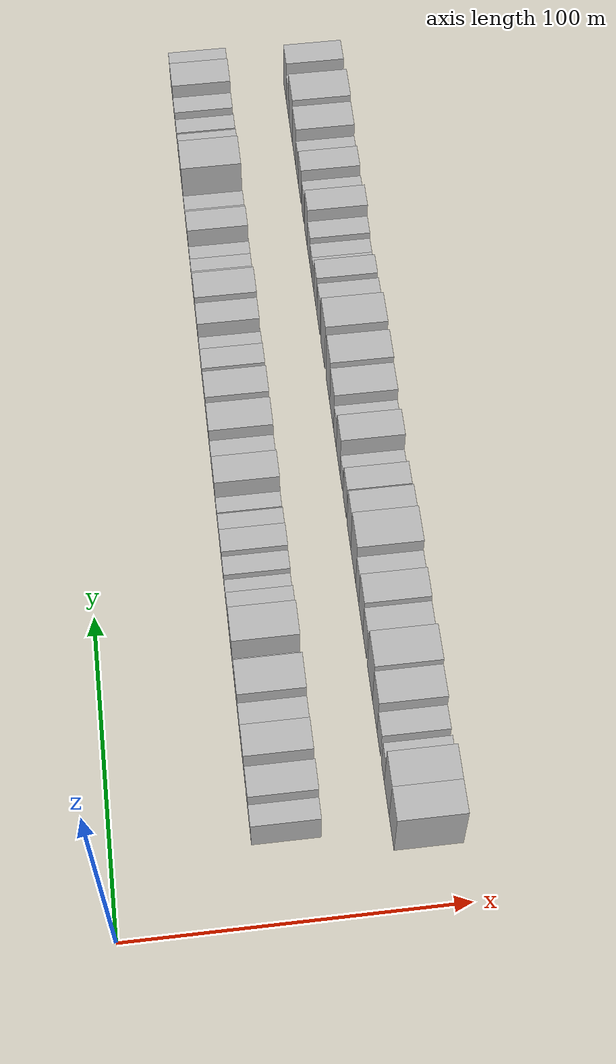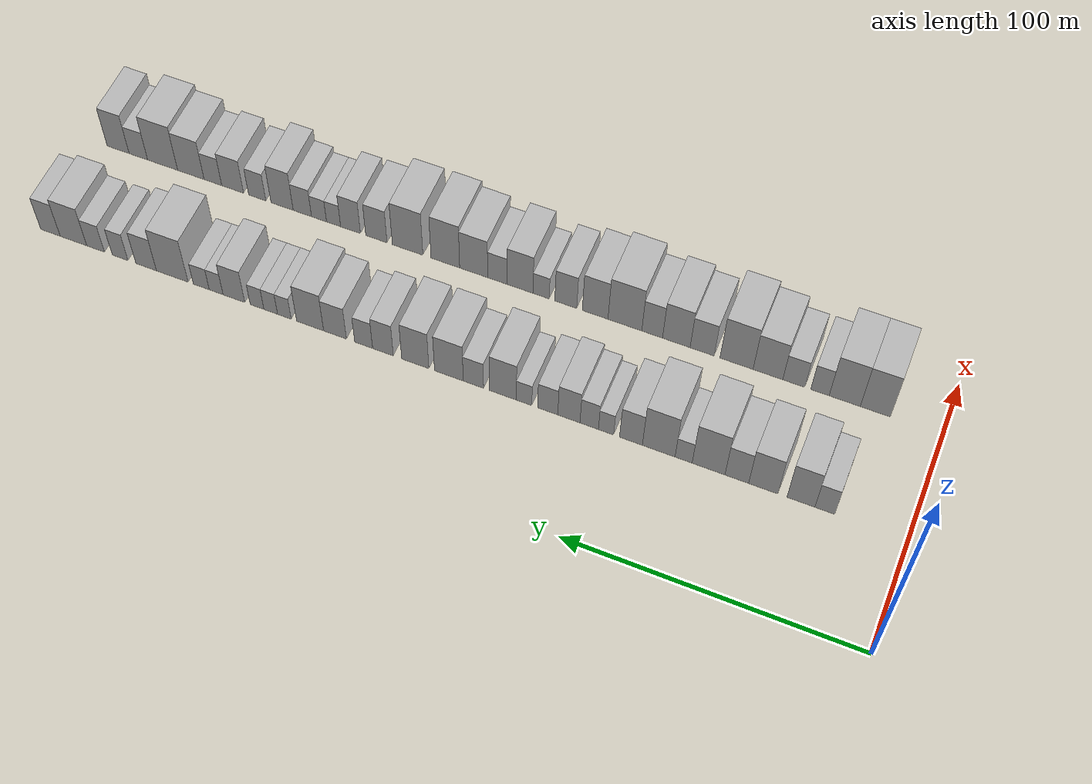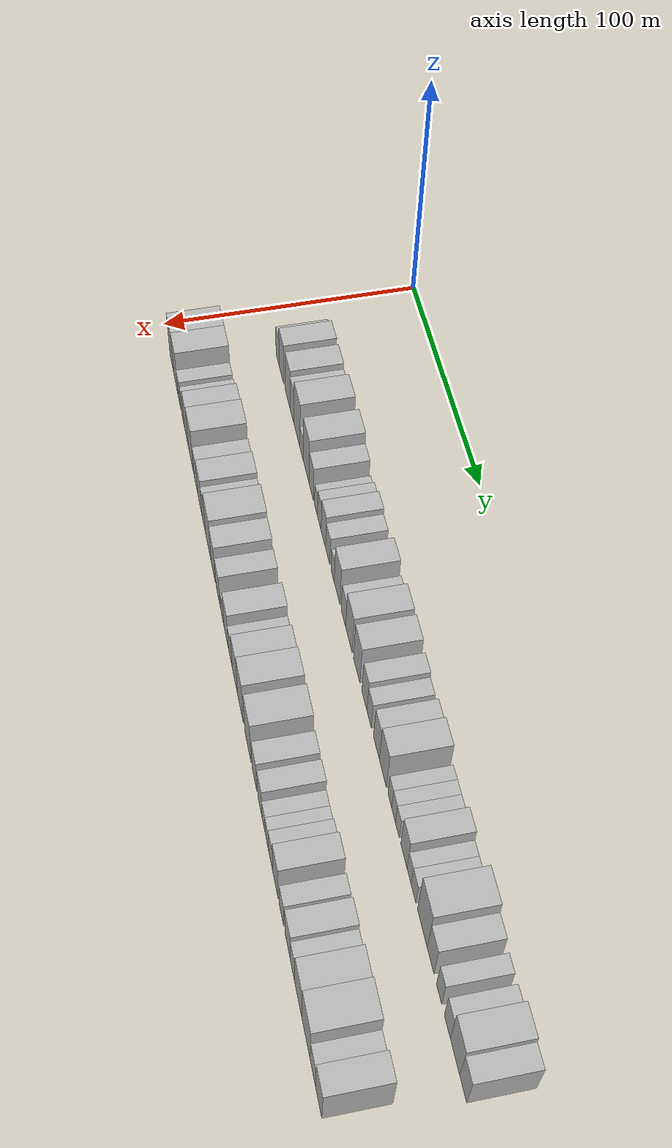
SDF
<sdf version="1.6">
 <world name="default">
  <model name="building_33">
   <static>1</static>
   <pose>50.0000 26.8743 0 0.000000 0.000000 0.000000</pose>
   <link name="link">
    <pose>0 0 7.50 0 0 0</pose>
    <collision name="collision"><geometry><box><size>20.0000 6.4330 15.0000</size></box></geometry></collision>
    <visual name="visual">
     <cast_shadows>0</cast_shadows>
     <geometry><box><size>20.0000 6.4330 15.0000</size></box></geometry>
     <material>
      <script>
       <uri>model://HANNAS_wall/materials/scripts</uri>
       <uri>model://HANNAS_wall/materials/textures</uri>
       <name>vrc/HANNAS_wall</name>
      </script>
     </material>
    </visual>
   </link>
  </model>
  <model name="building_34">
   <static>1</static>
   <pose>50.0000 34.6418 0 0.000000 0.000000 0.000000</pose>
   <link name="link">
    <pose>0 0 10.50 0 0 0</pose>
    <collision name="collision"><geometry><box><size>20.0000 9.1019 21.0000</size></box></geometry></collision>
    <visual name="visual">
     <cast_shadows>0</cast_shadows>
     <geometry><box><size>20.0000 9.1019 21.0000</size></box></geometry>
     <material>
      <script>
       <uri>model://HANNAS_wall/materials/scripts</uri>
       <uri>model://HANNAS_wall/materials/textures</uri>
       <name>vrc/HANNAS_wall</name>
      </script>
     </material>
    </visual>
   </link>
  </model>
  <model name="building_35">
   <static>1</static>
   <pose>50.0000 46.9906 0 0.000000 0.000000 0.000000</pose>
   <link name="link">
    <pose>0 0 10.50 0 0 0</pose>
    <collision name="collision"><geometry><box><size>20.0000 9.5956 21.0000</size></box></geometry></collision>
    <visual name="visual">
     <cast_shadows>0</cast_shadows>
     <geometry><box><size>20.0000 9.5956 21.0000</size></box></geometry>
     <material>
      <script>
       <uri>model://HANNAS_wall/materials/scripts</uri>
       <uri>model://HANNAS_wall/materials/textures</uri>
       <name>vrc/HANNAS_wall</name>
      </script>
     </material>
    </visual>
   </link>
  </model>
  <model name="building_36">
   <static>1</static>
   <pose>50.0000 55.7116 0 0.000000 0.000000 0.000000</pose>
   <link name="link">
    <pose>0 0 9.00 0 0 0</pose>
    <collision name="collision"><geometry><box><size>20.0000 7.8465 18.0000</size></box></geometry></collision>
    <visual name="visual">
     <cast_shadows>0</cast_shadows>
     <geometry><box><size>20.0000 7.8465 18.0000</size></box></geometry>
     <material>
      <script>
       <uri>model://HANNAS_wall/materials/scripts</uri>
       <uri>model://HANNAS_wall/materials/textures</uri>
       <name>vrc/HANNAS_wall</name>
      </script>
     </material>
    </visual>
   </link>
  </model>
  <model name="building_37">
   <static>1</static>
   <pose>50.0000 65.1007 0 0.000000 0.000000 0.000000</pose>
   <link name="link">
    <pose>0 0 12.00 0 0 0</pose>
    <collision name="collision"><geometry><box><size>20.0000 10.9316 24.0000</size></box></geometry></collision>
    <visual name="visual">
     <cast_shadows>0</cast_shadows>
     <geometry><box><size>20.0000 10.9316 24.0000</size></box></geometry>
     <material>
      <script>
       <uri>model://HANNAS_wall/materials/scripts</uri>
       <uri>model://HANNAS_wall/materials/textures</uri>
       <name>vrc/HANNAS_wall</name>
      </script>
     </material>
    </visual>
   </link>
  </model>
  <model name="building_38">
   <static>1</static>
   <pose>50.0000 73.4264 0 0.000000 0.000000 0.000000</pose>
   <link name="link">
    <pose>0 0 6.00 0 0 0</pose>
    <collision name="collision"><geometry><box><size>20.0000 5.7200 12.0000</size></box></geometry></collision>
    <visual name="visual">
     <cast_shadows>0</cast_shadows>
     <geometry><box><size>20.0000 5.7200 12.0000</size></box></geometry>
     <material>
      <script>
       <uri>model://HANNAS_wall/materials/scripts</uri>
       <uri>model://HANNAS_wall/materials/textures</uri>
       <name>vrc/HANNAS_wall</name>
      </script>
     </material>
    </visual>
   </link>
  </model>
  <model name="building_39">
   <static>1</static>
   <pose>50.0000 81.7890 0 0.000000 0.000000 0.000000</pose>
   <link name="link">
    <pose>0 0 12.00 0 0 0</pose>
    <collision name="collision"><geometry><box><size>20.0000 11.0051 24.0000</size></box></geometry></collision>
    <visual name="visual">
     <cast_shadows>0</cast_shadows>
     <geometry><box><size>20.0000 11.0051 24.0000</size></box></geometry>
     <material>
      <script>
       <uri>model://HANNAS_wall/materials/scripts</uri>
       <uri>model://HANNAS_wall/materials/textures</uri>
       <name>vrc/HANNAS_wall</name>
      </script>
     </material>
    </visual>
   </link>
  </model>
  <model name="building_40">
   <static>1</static>
   <pose>50.0000 91.1597 0 0.000000 0.000000 0.000000</pose>
   <link name="link">
    <pose>0 0 9.00 0 0 0</pose>
    <collision name="collision"><geometry><box><size>20.0000 7.7363 18.0000</size></box></geometry></collision>
    <visual name="visual">
     <cast_shadows>0</cast_shadows>
     <geometry><box><size>20.0000 7.7363 18.0000</size></box></geometry>
     <material>
      <script>
       <uri>model://HANNAS_wall/materials/scripts</uri>
       <uri>model://HANNAS_wall/materials/textures</uri>
       <name>vrc/HANNAS_wall</name>
      </script>
     </material>
    </visual>
   </link>
  </model>
  <model name="building_41">
   <static>1</static>
   <pose>50.0000 99.6184 0 0.000000 0.000000 0.000000</pose>
   <link name="link">
    <pose>0 0 6.00 0 0 0</pose>
    <collision name="collision"><geometry><box><size>20.0000 5.1811 12.0000</size></box></geometry></collision>
    <visual name="visual">
     <cast_shadows>0</cast_shadows>
     <geometry><box><size>20.0000 5.1811 12.0000</size></box></geometry>
     <material>
      <script>
       <uri>model://HANNAS_wall/materials/scripts</uri>
       <uri>model://HANNAS_wall/materials/textures</uri>
       <name>vrc/HANNAS_wall</name>
      </script>
     </material>
    </visual>
   </link>
  </model>
  <model name="building_42">
   <static>1</static>
   <pose>50.0000 105.3575 0 0.000000 0.000000 0.000000</pose>
   <link name="link">
    <pose>0 0 7.50 0 0 0</pose>
    <collision name="collision"><geometry><box><size>20.0000 6.2972 15.0000</size></box></geometry></collision>
    <visual name="visual">
     <cast_shadows>0</cast_shadows>
     <geometry><box><size>20.0000 6.2972 15.0000</size></box></geometry>
     <material>
      <script>
       <uri>model://HANNAS_wall/materials/scripts</uri>
       <uri>model://HANNAS_wall/materials/textures</uri>
       <name>vrc/HANNAS_wall</name>
      </script>
     </material>
    </visual>
   </link>
  </model>
  <model name="building_43">
   <static>1</static>
   <pose>50.0000 112.3282 0 0.000000 0.000000 0.000000</pose>
   <link name="link">
    <pose>0 0 9.00 0 0 0</pose>
    <collision name="collision"><geometry><box><size>20.0000 7.6441 18.0000</size></box></geometry></collision>
    <visual name="visual">
     <cast_shadows>0</cast_shadows>
     <geometry><box><size>20.0000 7.6441 18.0000</size></box></geometry>
     <material>
      <script>
       <uri>model://HANNAS_wall/materials/scripts</uri>
       <uri>model://HANNAS_wall/materials/textures</uri>
       <name>vrc/HANNAS_wall</name>
      </script>
     </material>
    </visual>
   </link>
  </model>
  <model name="building_44">
   <static>1</static>
   <pose>50.0000 119.6275 0 0.000000 0.000000 0.000000</pose>
   <link name="link">
    <pose>0 0 7.50 0 0 0</pose>
    <collision name="collision"><geometry><box><size>20.0000 6.9546 15.0000</size></box></geometry></collision>
    <visual name="visual">
     <cast_shadows>0</cast_shadows>
     <geometry><box><size>20.0000 6.9546 15.0000</size></box></geometry>
     <material>
      <script>
       <uri>model://HANNAS_wall/materials/scripts</uri>
       <uri>model://HANNAS_wall/materials/textures</uri>
       <name>vrc/HANNAS_wall</name>
      </script>
     </material>
    </visual>
   </link>
  </model>
  <model name="building_45">
   <static>1</static>
   <pose>50.0000 127.7976 0 0.000000 0.000000 0.000000</pose>
   <link name="link">
    <pose>0 0 6.00 0 0 0</pose>
    <collision name="collision"><geometry><box><size>20.0000 5.3856 12.0000</size></box></geometry></collision>
    <visual name="visual">
     <cast_shadows>0</cast_shadows>
     <geometry><box><size>20.0000 5.3856 12.0000</size></box></geometry>
     <material>
      <script>
       <uri>model://HANNAS_wall/materials/scripts</uri>
       <uri>model://HANNAS_wall/materials/textures</uri>
       <name>vrc/HANNAS_wall</name>
      </script>
     </material>
    </visual>
   </link>
  </model>
  <model name="building_46">
   <static>1</static>
   <pose>50.0000 135.2034 0 0.000000 0.000000 0.000000</pose>
   <link name="link">
    <pose>0 0 10.50 0 0 0</pose>
    <collision name="collision"><geometry><box><size>20.0000 9.4259 21.0000</size></box></geometry></collision>
    <visual name="visual">
     <cast_shadows>0</cast_shadows>
     <geometry><box><size>20.0000 9.4259 21.0000</size></box></geometry>
     <material>
      <script>
       <uri>model://HANNAS_wall/materials/scripts</uri>
       <uri>model://HANNAS_wall/materials/textures</uri>
       <name>vrc/HANNAS_wall</name>
      </script>
     </material>
    </visual>
   </link>
  </model>
  <model name="building_47">
   <static>1</static>
   <pose>50.0000 145.4848 0 0.000000 0.000000 0.000000</pose>
   <link name="link">
    <pose>0 0 7.50 0 0 0</pose>
    <collision name="collision"><geometry><box><size>20.0000 7.1369 15.0000</size></box></geometry></collision>
    <visual name="visual">
     <cast_shadows>0</cast_shadows>
     <geometry><box><size>20.0000 7.1369 15.0000</size></box></geometry>
     <material>
      <script>
       <uri>model://HANNAS_wall/materials/scripts</uri>
       <uri>model://HANNAS_wall/materials/textures</uri>
       <name>vrc/HANNAS_wall</name>
      </script>
     </material>
    </visual>
   </link>
  </model>
  <model name="building_48">
   <static>1</static>
   <pose>50.0000 154.1244 0 0.000000 0.000000 0.000000</pose>
   <link name="link">
    <pose>0 0 10.50 0 0 0</pose>
    <collision name="collision"><geometry><box><size>20.0000 10.1422 21.0000</size></box></geometry></collision>
    <visual name="visual">
     <cast_shadows>0</cast_shadows>
     <geometry><box><size>20.0000 10.1422 21.0000</size></box></geometry>
     <material>
      <script>
       <uri>model://HANNAS_wall/materials/scripts</uri>
       <uri>model://HANNAS_wall/materials/textures</uri>
       <name>vrc/HANNAS_wall</name>
      </script>
     </material>
    </visual>
   </link>
  </model>
  <model name="building_49">
   <static>1</static>
   <pose>50.0000 166.0263 0 0.000000 0.000000 0.000000</pose>
   <link name="link">
    <pose>0 0 10.50 0 0 0</pose>
    <collision name="collision"><geometry><box><size>20.0000 9.6616 21.0000</size></box></geometry></collision>
    <visual name="visual">
     <cast_shadows>0</cast_shadows>
     <geometry><box><size>20.0000 9.6616 21.0000</size></box></geometry>
     <material>
      <script>
       <uri>model://HANNAS_wall/materials/scripts</uri>
       <uri>model://HANNAS_wall/materials/textures</uri>
       <name>vrc/HANNAS_wall</name>
      </script>
     </material>
    </visual>
   </link>
  </model>
  <model name="building_50">
   <static>1</static>
   <pose>50.0000 177.5705 0 0.000000 0.000000 0.000000</pose>
   <link name="link">
    <pose>0 0 9.00 0 0 0</pose>
    <collision name="collision"><geometry><box><size>20.0000 7.4269 18.0000</size></box></geometry></collision>
    <visual name="visual">
     <cast_shadows>0</cast_shadows>
     <geometry><box><size>20.0000 7.4269 18.0000</size></box></geometry>
     <material>
      <script>
       <uri>model://HANNAS_wall/materials/scripts</uri>
       <uri>model://HANNAS_wall/materials/textures</uri>
       <name>vrc/HANNAS_wall</name>
      </script>
     </material>
    </visual>
   </link>
  </model>
  <model name="building_51">
   <static>1</static>
   <pose>50.0000 184.5104 0 0.000000 0.000000 0.000000</pose>
   <link name="link">
    <pose>0 0 7.50 0 0 0</pose>
    <collision name="collision"><geometry><box><size>20.0000 6.4529 15.0000</size></box></geometry></collision>
    <visual name="visual">
     <cast_shadows>0</cast_shadows>
     <geometry><box><size>20.0000 6.4529 15.0000</size></box></geometry>
     <material>
      <script>
       <uri>model://HANNAS_wall/materials/scripts</uri>
       <uri>model://HANNAS_wall/materials/textures</uri>
       <name>vrc/HANNAS_wall</name>
      </script>
     </material>
    </visual>
   </link>
  </model>
  <model name="building_52">
   <static>1</static>
   <pose>50.0000 194.8778 0 0.000000 0.000000 0.000000</pose>
   <link name="link">
    <pose>0 0 9.00 0 0 0</pose>
    <collision name="collision"><geometry><box><size>20.0000 8.2820 18.0000</size></box></geometry></collision>
    <visual name="visual">
     <cast_shadows>0</cast_shadows>
     <geometry><box><size>20.0000 8.2820 18.0000</size></box></geometry>
     <material>
      <script>
       <uri>model://HANNAS_wall/materials/scripts</uri>
       <uri>model://HANNAS_wall/materials/textures</uri>
       <name>vrc/HANNAS_wall</name>
      </script>
     </material>
    </visual>
   </link>
  </model>
  <model name="building_53">
   <static>1</static>
   <pose>50.0000 203.9440 0 0.000000 0.000000 0.000000</pose>
   <link name="link">
    <pose>0 0 10.50 0 0 0</pose>
    <collision name="collision"><geometry><box><size>20.0000 9.8504 21.0000</size></box></geometry></collision>
    <visual name="visual">
     <cast_shadows>0</cast_shadows>
     <geometry><box><size>20.0000 9.8504 21.0000</size></box></geometry>
     <material>
      <script>
       <uri>model://HANNAS_wall/materials/scripts</uri>
       <uri>model://HANNAS_wall/materials/textures</uri>
       <name>vrc/HANNAS_wall</name>
      </script>
     </material>
    </visual>
   </link>
  </model>
  <model name="building_54">
   <static>1</static>
   <pose>50.0000 213.3697 0 0.000000 0.000000 0.000000</pose>
   <link name="link">
    <pose>0 0 6.00 0 0 0</pose>
    <collision name="collision"><geometry><box><size>20.0000 5.0008 12.0000</size></box></geometry></collision>
    <visual name="visual">
     <cast_shadows>0</cast_shadows>
     <geometry><box><size>20.0000 5.0008 12.0000</size></box></geometry>
     <material>
      <script>
       <uri>model://HANNAS_wall/materials/scripts</uri>
       <uri>model://HANNAS_wall/materials/textures</uri>
       <name>vrc/HANNAS_wall</name>
      </script>
     </material>
    </visual>
   </link>
  </model>
  <model name="building_55">
   <static>1</static>
   <pose>50.0000 218.3970 0 0.000000 0.000000 0.000000</pose>
   <link name="link">
    <pose>0 0 6.00 0 0 0</pose>
    <collision name="collision"><geometry><box><size>20.0000 5.0537 12.0000</size></box></geometry></collision>
    <visual name="visual">
     <cast_shadows>0</cast_shadows>
     <geometry><box><size>20.0000 5.0537 12.0000</size></box></geometry>
     <material>
      <script>
       <uri>model://HANNAS_wall/materials/scripts</uri>
       <uri>model://HANNAS_wall/materials/textures</uri>
       <name>vrc/HANNAS_wall</name>
      </script>
     </material>
    </visual>
   </link>
  </model>
  <model name="building_56">
   <static>1</static>
   <pose>50.0000 223.4381 0 0.000000 0.000000 0.000000</pose>
   <link name="link">
    <pose>0 0 6.00 0 0 0</pose>
    <collision name="collision"><geometry><box><size>20.0000 5.0284 12.0000</size></box></geometry></collision>
    <visual name="visual">
     <cast_shadows>0</cast_shadows>
     <geometry><box><size>20.0000 5.0284 12.0000</size></box></geometry>
     <material>
      <script>
       <uri>model://HANNAS_wall/materials/scripts</uri>
       <uri>model://HANNAS_wall/materials/textures</uri>
       <name>vrc/HANNAS_wall</name>
      </script>
     </material>
    </visual>
   </link>
  </model>
  <model name="building_57">
   <static>1</static>
   <pose>50.0000 231.9888 0 0.000000 0.000000 0.000000</pose>
   <link name="link">
    <pose>0 0 9.00 0 0 0</pose>
    <collision name="collision"><geometry><box><size>20.0000 8.0730 18.0000</size></box></geometry></collision>
    <visual name="visual">
     <cast_shadows>0</cast_shadows>
     <geometry><box><size>20.0000 8.0730 18.0000</size></box></geometry>
     <material>
      <script>
       <uri>model://HANNAS_wall/materials/scripts</uri>
       <uri>model://HANNAS_wall/materials/textures</uri>
       <name>vrc/HANNAS_wall</name>
      </script>
     </material>
    </visual>
   </link>
  </model>
  <model name="building_58">
   <static>1</static>
   <pose>50.0000 238.5985 0 0.000000 0.000000 0.000000</pose>
   <link name="link">
    <pose>0 0 6.00 0 0 0</pose>
    <collision name="collision"><geometry><box><size>20.0000 5.1465 12.0000</size></box></geometry></collision>
    <visual name="visual">
     <cast_shadows>0</cast_shadows>
     <geometry><box><size>20.0000 5.1465 12.0000</size></box></geometry>
     <material>
      <script>
       <uri>model://HANNAS_wall/materials/scripts</uri>
       <uri>model://HANNAS_wall/materials/textures</uri>
       <name>vrc/HANNAS_wall</name>
      </script>
     </material>
    </visual>
   </link>
  </model>
  <model name="building_59">
   <static>1</static>
   <pose>50.0000 244.1406 0 0.000000 0.000000 0.000000</pose>
   <link name="link">
    <pose>0 0 6.00 0 0 0</pose>
    <collision name="collision"><geometry><box><size>20.0000 5.9376 12.0000</size></box></geometry></collision>
    <visual name="visual">
     <cast_shadows>0</cast_shadows>
     <geometry><box><size>20.0000 5.9376 12.0000</size></box></geometry>
     <material>
      <script>
       <uri>model://HANNAS_wall/materials/scripts</uri>
       <uri>model://HANNAS_wall/materials/textures</uri>
       <name>vrc/HANNAS_wall</name>
      </script>
     </material>
    </visual>
   </link>
  </model>
  <model name="building_60">
   <static>1</static>
   <pose>50.0000 255.0784 0 0.000000 0.000000 0.000000</pose>
   <link name="link">
    <pose>0 0 12.00 0 0 0</pose>
    <collision name="collision"><geometry><box><size>20.0000 11.9380 24.0000</size></box></geometry></collision>
    <visual name="visual">
     <cast_shadows>0</cast_shadows>
     <geometry><box><size>20.0000 11.9380 24.0000</size></box></geometry>
     <material>
      <script>
       <uri>model://HANNAS_wall/materials/scripts</uri>
       <uri>model://HANNAS_wall/materials/textures</uri>
       <name>vrc/HANNAS_wall</name>
      </script>
     </material>
    </visual>
   </link>
  </model>
  <model name="building_61">
   <static>1</static>
   <pose>50.0000 264.9661 0 0.000000 0.000000 0.000000</pose>
   <link name="link">
    <pose>0 0 9.00 0 0 0</pose>
    <collision name="collision"><geometry><box><size>20.0000 7.8374 18.0000</size></box></geometry></collision>
    <visual name="visual">
     <cast_shadows>0</cast_shadows>
     <geometry><box><size>20.0000 7.8374 18.0000</size></box></geometry>
     <material>
      <script>
       <uri>model://HANNAS_wall/materials/scripts</uri>
       <uri>model://HANNAS_wall/materials/textures</uri>
       <name>vrc/HANNAS_wall</name>
      </script>
     </material>
    </visual>
   </link>
  </model>
  <model name="building_62">
   <static>1</static>
   <pose>50.0000 274.8857 0 0.000000 0.000000 0.000000</pose>
   <link name="link">
    <pose>0 0 7.50 0 0 0</pose>
    <collision name="collision"><geometry><box><size>20.0000 6.0018 15.0000</size></box></geometry></collision>
    <visual name="visual">
     <cast_shadows>0</cast_shadows>
     <geometry><box><size>20.0000 6.0018 15.0000</size></box></geometry>
     <material>
      <script>
       <uri>model://HANNAS_wall/materials/scripts</uri>
       <uri>model://HANNAS_wall/materials/textures</uri>
       <name>vrc/HANNAS_wall</name>
      </script>
     </material>
    </visual>
   </link>
  </model>
  <model name="building_63">
   <static>1</static>
   <pose>50.0000 284.2637 0 0.000000 0.000000 0.000000</pose>
   <link name="link">
    <pose>0 0 7.50 0 0 0</pose>
    <collision name="collision"><geometry><box><size>20.0000 6.7541 15.0000</size></box></geometry></collision>
    <visual name="visual">
     <cast_shadows>0</cast_shadows>
     <geometry><box><size>20.0000 6.7541 15.0000</size></box></geometry>
     <material>
      <script>
       <uri>model://HANNAS_wall/materials/scripts</uri>
       <uri>model://HANNAS_wall/materials/textures</uri>
       <name>vrc/HANNAS_wall</name>
      </script>
     </material>
    </visual>
   </link>
  </model>
  <model name="building_64">
   <static>1</static>
   <pose>50.0000 292.7932 0 0.000000 0.000000 0.000000</pose>
   <link name="link">
    <pose>0 0 10.50 0 0 0</pose>
    <collision name="collision"><geometry><box><size>20.0000 10.3050 21.0000</size></box></geometry></collision>
    <visual name="visual">
     <cast_shadows>0</cast_shadows>
     <geometry><box><size>20.0000 10.3050 21.0000</size></box></geometry>
     <material>
      <script>
       <uri>model://HANNAS_wall/materials/scripts</uri>
       <uri>model://HANNAS_wall/materials/textures</uri>
       <name>vrc/HANNAS_wall</name>
      </script>
     </material>
    </visual>
   </link>
  </model>
  <model name="building_65">
   <static>1</static>
   <pose>50.0000 301.7156 0 0.000000 0.000000 0.000000</pose>
   <link name="link">
    <pose>0 0 9.00 0 0 0</pose>
    <collision name="collision"><geometry><box><size>20.0000 7.5399 18.0000</size></box></geometry></collision>
    <visual name="visual">
     <cast_shadows>0</cast_shadows>
     <geometry><box><size>20.0000 7.5399 18.0000</size></box></geometry>
     <material>
      <script>
       <uri>model://HANNAS_wall/materials/scripts</uri>
       <uri>model://HANNAS_wall/materials/textures</uri>
       <name>vrc/HANNAS_wall</name>
      </script>
     </material>
    </visual>
   </link>
  </model>
  <model name="building_98">
   <static>1</static>
   <pose>90.0000 22.4146 0 0.000000 0.000000 0.000000</pose>
   <link name="link">
    <pose>0 0 12.00 0 0 0</pose>
    <collision name="collision"><geometry><box><size>20.0000 10.0568 24.0000</size></box></geometry></collision>
    <visual name="visual">
     <cast_shadows>0</cast_shadows>
     <geometry><box><size>20.0000 10.0568 24.0000</size></box></geometry>
     <material>
      <script>
       <uri>model://HANNAS_wall/materials/scripts</uri>
       <uri>model://HANNAS_wall/materials/textures</uri>
       <name>vrc/HANNAS_wall</name>
      </script>
     </material>
    </visual>
   </link>
  </model>
  <model name="building_99">
   <static>1</static>
   <pose>90.0000 32.6467 0 0.000000 0.000000 0.000000</pose>
   <link name="link">
    <pose>0 0 12.00 0 0 0</pose>
    <collision name="collision"><geometry><box><size>20.0000 10.4075 24.0000</size></box></geometry></collision>
    <visual name="visual">
     <cast_shadows>0</cast_shadows>
     <geometry><box><size>20.0000 10.4075 24.0000</size></box></geometry>
     <material>
      <script>
       <uri>model://HANNAS_wall/materials/scripts</uri>
       <uri>model://HANNAS_wall/materials/textures</uri>
       <name>vrc/HANNAS_wall</name>
      </script>
     </material>
    </visual>
   </link>
  </model>
  <model name="building_100">
   <static>1</static>
   <pose>90.0000 40.9471 0 0.000000 0.000000 0.000000</pose>
   <link name="link">
    <pose>0 0 7.50 0 0 0</pose>
    <collision name="collision"><geometry><box><size>20.0000 6.1932 15.0000</size></box></geometry></collision>
    <visual name="visual">
     <cast_shadows>0</cast_shadows>
     <geometry><box><size>20.0000 6.1932 15.0000</size></box></geometry>
     <material>
      <script>
       <uri>model://HANNAS_wall/materials/scripts</uri>
       <uri>model://HANNAS_wall/materials/textures</uri>
       <name>vrc/HANNAS_wall</name>
      </script>
     </material>
    </visual>
   </link>
  </model>
  <model name="building_101">
   <static>1</static>
   <pose>90.0000 49.7747 0 0.000000 0.000000 0.000000</pose>
   <link name="link">
    <pose>0 0 7.50 0 0 0</pose>
    <collision name="collision"><geometry><box><size>20.0000 7.4620 15.0000</size></box></geometry></collision>
    <visual name="visual">
     <cast_shadows>0</cast_shadows>
     <geometry><box><size>20.0000 7.4620 15.0000</size></box></geometry>
     <material>
      <script>
       <uri>model://HANNAS_wall/materials/scripts</uri>
       <uri>model://HANNAS_wall/materials/textures</uri>
       <name>vrc/HANNAS_wall</name>
      </script>
     </material>
    </visual>
   </link>
  </model>
  <model name="building_102">
   <static>1</static>
   <pose>90.0000 58.5725 0 0.000000 0.000000 0.000000</pose>
   <link name="link">
    <pose>0 0 10.50 0 0 0</pose>
    <collision name="collision"><geometry><box><size>20.0000 10.1336 21.0000</size></box></geometry></collision>
    <visual name="visual">
     <cast_shadows>0</cast_shadows>
     <geometry><box><size>20.0000 10.1336 21.0000</size></box></geometry>
     <material>
      <script>
       <uri>model://HANNAS_wall/materials/scripts</uri>
       <uri>model://HANNAS_wall/materials/textures</uri>
       <name>vrc/HANNAS_wall</name>
      </script>
     </material>
    </visual>
   </link>
  </model>
  <model name="building_103">
   <static>1</static>
   <pose>90.0000 69.3233 0 0.000000 0.000000 0.000000</pose>
   <link name="link">
    <pose>0 0 12.00 0 0 0</pose>
    <collision name="collision"><geometry><box><size>20.0000 11.3681 24.0000</size></box></geometry></collision>
    <visual name="visual">
     <cast_shadows>0</cast_shadows>
     <geometry><box><size>20.0000 11.3681 24.0000</size></box></geometry>
     <material>
      <script>
       <uri>model://HANNAS_wall/materials/scripts</uri>
       <uri>model://HANNAS_wall/materials/textures</uri>
       <name>vrc/HANNAS_wall</name>
      </script>
     </material>
    </visual>
   </link>
  </model>
  <model name="building_104">
   <static>1</static>
   <pose>90.0000 81.1631 0 0.000000 0.000000 0.000000</pose>
   <link name="link">
    <pose>0 0 9.00 0 0 0</pose>
    <collision name="collision"><geometry><box><size>20.0000 8.3114 18.0000</size></box></geometry></collision>
    <visual name="visual">
     <cast_shadows>0</cast_shadows>
     <geometry><box><size>20.0000 8.3114 18.0000</size></box></geometry>
     <material>
      <script>
       <uri>model://HANNAS_wall/materials/scripts</uri>
       <uri>model://HANNAS_wall/materials/textures</uri>
       <name>vrc/HANNAS_wall</name>
      </script>
     </material>
    </visual>
   </link>
  </model>
  <model name="building_105">
   <static>1</static>
   <pose>90.0000 90.1153 0 0.000000 0.000000 0.000000</pose>
   <link name="link">
    <pose>0 0 10.50 0 0 0</pose>
    <collision name="collision"><geometry><box><size>20.0000 9.5930 21.0000</size></box></geometry></collision>
    <visual name="visual">
     <cast_shadows>0</cast_shadows>
     <geometry><box><size>20.0000 9.5930 21.0000</size></box></geometry>
     <material>
      <script>
       <uri>model://HANNAS_wall/materials/scripts</uri>
       <uri>model://HANNAS_wall/materials/textures</uri>
       <name>vrc/HANNAS_wall</name>
      </script>
     </material>
    </visual>
   </link>
  </model>
  <model name="building_106">
   <static>1</static>
   <pose>90.0000 98.5460 0 0.000000 0.000000 0.000000</pose>
   <link name="link">
    <pose>0 0 9.00 0 0 0</pose>
    <collision name="collision"><geometry><box><size>20.0000 7.2683 18.0000</size></box></geometry></collision>
    <visual name="visual">
     <cast_shadows>0</cast_shadows>
     <geometry><box><size>20.0000 7.2683 18.0000</size></box></geometry>
     <material>
      <script>
       <uri>model://HANNAS_wall/materials/scripts</uri>
       <uri>model://HANNAS_wall/materials/textures</uri>
       <name>vrc/HANNAS_wall</name>
      </script>
     </material>
    </visual>
   </link>
  </model>
  <model name="building_107">
   <static>1</static>
   <pose>90.0000 108.1331 0 0.000000 0.000000 0.000000</pose>
   <link name="link">
    <pose>0 0 12.00 0 0 0</pose>
    <collision name="collision"><geometry><box><size>20.0000 11.9060 24.0000</size></box></geometry></collision>
    <visual name="visual">
     <cast_shadows>0</cast_shadows>
     <geometry><box><size>20.0000 11.9060 24.0000</size></box></geometry>
     <material>
      <script>
       <uri>model://HANNAS_wall/materials/scripts</uri>
       <uri>model://HANNAS_wall/materials/textures</uri>
       <name>vrc/HANNAS_wall</name>
      </script>
     </material>
    </visual>
   </link>
  </model>
  <model name="building_108">
   <static>1</static>
   <pose>90.0000 118.6266 0 0.000000 0.000000 0.000000</pose>
   <link name="link">
    <pose>0 0 10.50 0 0 0</pose>
    <collision name="collision"><geometry><box><size>20.0000 9.0810 21.0000</size></box></geometry></collision>
    <visual name="visual">
     <cast_shadows>0</cast_shadows>
     <geometry><box><size>20.0000 9.0810 21.0000</size></box></geometry>
     <material>
      <script>
       <uri>model://HANNAS_wall/materials/scripts</uri>
       <uri>model://HANNAS_wall/materials/textures</uri>
       <name>vrc/HANNAS_wall</name>
      </script>
     </material>
    </visual>
   </link>
  </model>
  <model name="building_109">
   <static>1</static>
   <pose>90.0000 129.0695 0 0.000000 0.000000 0.000000</pose>
   <link name="link">
    <pose>0 0 9.00 0 0 0</pose>
    <collision name="collision"><geometry><box><size>20.0000 7.8047 18.0000</size></box></geometry></collision>
    <visual name="visual">
     <cast_shadows>0</cast_shadows>
     <geometry><box><size>20.0000 7.8047 18.0000</size></box></geometry>
     <material>
      <script>
       <uri>model://HANNAS_wall/materials/scripts</uri>
       <uri>model://HANNAS_wall/materials/textures</uri>
       <name>vrc/HANNAS_wall</name>
      </script>
     </material>
    </visual>
   </link>
  </model>
  <model name="building_110">
   <static>1</static>
   <pose>90.0000 137.8951 0 0.000000 0.000000 0.000000</pose>
   <link name="link">
    <pose>0 0 6.00 0 0 0</pose>
    <collision name="collision"><geometry><box><size>20.0000 5.8465 12.0000</size></box></geometry></collision>
    <visual name="visual">
     <cast_shadows>0</cast_shadows>
     <geometry><box><size>20.0000 5.8465 12.0000</size></box></geometry>
     <material>
      <script>
       <uri>model://HANNAS_wall/materials/scripts</uri>
       <uri>model://HANNAS_wall/materials/textures</uri>
       <name>vrc/HANNAS_wall</name>
      </script>
     </material>
    </visual>
   </link>
  </model>
  <model name="building_111">
   <static>1</static>
   <pose>90.0000 145.4555 0 0.000000 0.000000 0.000000</pose>
   <link name="link">
    <pose>0 0 10.50 0 0 0</pose>
    <collision name="collision"><geometry><box><size>20.0000 9.2743 21.0000</size></box></geometry></collision>
    <visual name="visual">
     <cast_shadows>0</cast_shadows>
     <geometry><box><size>20.0000 9.2743 21.0000</size></box></geometry>
     <material>
      <script>
       <uri>model://HANNAS_wall/materials/scripts</uri>
       <uri>model://HANNAS_wall/materials/textures</uri>
       <name>vrc/HANNAS_wall</name>
      </script>
     </material>
    </visual>
   </link>
  </model>
  <model name="building_112">
   <static>1</static>
   <pose>90.0000 153.6419 0 0.000000 0.000000 0.000000</pose>
   <link name="link">
    <pose>0 0 7.50 0 0 0</pose>
    <collision name="collision"><geometry><box><size>20.0000 7.0985 15.0000</size></box></geometry></collision>
    <visual name="visual">
     <cast_shadows>0</cast_shadows>
     <geometry><box><size>20.0000 7.0985 15.0000</size></box></geometry>
     <material>
      <script>
       <uri>model://HANNAS_wall/materials/scripts</uri>
       <uri>model://HANNAS_wall/materials/textures</uri>
       <name>vrc/HANNAS_wall</name>
      </script>
     </material>
    </visual>
   </link>
  </model>
  <model name="building_113">
   <static>1</static>
   <pose>90.0000 162.2819 0 0.000000 0.000000 0.000000</pose>
   <link name="link">
    <pose>0 0 10.50 0 0 0</pose>
    <collision name="collision"><geometry><box><size>20.0000 10.1814 21.0000</size></box></geometry></collision>
    <visual name="visual">
     <cast_shadows>0</cast_shadows>
     <geometry><box><size>20.0000 10.1814 21.0000</size></box></geometry>
     <material>
      <script>
       <uri>model://HANNAS_wall/materials/scripts</uri>
       <uri>model://HANNAS_wall/materials/textures</uri>
       <name>vrc/HANNAS_wall</name>
      </script>
     </material>
    </visual>
   </link>
  </model>
  <model name="building_114">
   <static>1</static>
   <pose>90.0000 172.6249 0 0.000000 0.000000 0.000000</pose>
   <link name="link">
    <pose>0 0 12.00 0 0 0</pose>
    <collision name="collision"><geometry><box><size>20.0000 10.5047 24.0000</size></box></geometry></collision>
    <visual name="visual">
     <cast_shadows>0</cast_shadows>
     <geometry><box><size>20.0000 10.5047 24.0000</size></box></geometry>
     <material>
      <script>
       <uri>model://HANNAS_wall/materials/scripts</uri>
       <uri>model://HANNAS_wall/materials/textures</uri>
       <name>vrc/HANNAS_wall</name>
      </script>
     </material>
    </visual>
   </link>
  </model>
  <model name="building_115">
   <static>1</static>
   <pose>90.0000 186.5243 0 0.000000 0.000000 0.000000</pose>
   <link name="link">
    <pose>0 0 12.00 0 0 0</pose>
    <collision name="collision"><geometry><box><size>20.0000 11.2942 24.0000</size></box></geometry></collision>
    <visual name="visual">
     <cast_shadows>0</cast_shadows>
     <geometry><box><size>20.0000 11.2942 24.0000</size></box></geometry>
     <material>
      <script>
       <uri>model://HANNAS_wall/materials/scripts</uri>
       <uri>model://HANNAS_wall/materials/textures</uri>
       <name>vrc/HANNAS_wall</name>
      </script>
     </material>
    </visual>
   </link>
  </model>
  <model name="building_116">
   <static>1</static>
   <pose>90.0000 198.1309 0 0.000000 0.000000 0.000000</pose>
   <link name="link">
    <pose>0 0 9.00 0 0 0</pose>
    <collision name="collision"><geometry><box><size>20.0000 7.9190 18.0000</size></box></geometry></collision>
    <visual name="visual">
     <cast_shadows>0</cast_shadows>
     <geometry><box><size>20.0000 7.9190 18.0000</size></box></geometry>
     <material>
      <script>
       <uri>model://HANNAS_wall/materials/scripts</uri>
       <uri>model://HANNAS_wall/materials/textures</uri>
       <name>vrc/HANNAS_wall</name>
      </script>
     </material>
    </visual>
   </link>
  </model>
  <model name="building_117">
   <static>1</static>
   <pose>90.0000 207.8003 0 0.000000 0.000000 0.000000</pose>
   <link name="link">
    <pose>0 0 9.00 0 0 0</pose>
    <collision name="collision"><geometry><box><size>20.0000 7.4198 18.0000</size></box></geometry></collision>
    <visual name="visual">
     <cast_shadows>0</cast_shadows>
     <geometry><box><size>20.0000 7.4198 18.0000</size></box></geometry>
     <material>
      <script>
       <uri>model://HANNAS_wall/materials/scripts</uri>
       <uri>model://HANNAS_wall/materials/textures</uri>
       <name>vrc/HANNAS_wall</name>
      </script>
     </material>
    </visual>
   </link>
  </model>
  <model name="building_118">
   <static>1</static>
   <pose>90.0000 214.1695 0 0.000000 0.000000 0.000000</pose>
   <link name="link">
    <pose>0 0 6.00 0 0 0</pose>
    <collision name="collision"><geometry><box><size>20.0000 5.3186 12.0000</size></box></geometry></collision>
    <visual name="visual">
     <cast_shadows>0</cast_shadows>
     <geometry><box><size>20.0000 5.3186 12.0000</size></box></geometry>
     <material>
      <script>
       <uri>model://HANNAS_wall/materials/scripts</uri>
       <uri>model://HANNAS_wall/materials/textures</uri>
       <name>vrc/HANNAS_wall</name>
      </script>
     </material>
    </visual>
   </link>
  </model>
  <model name="building_119">
   <static>1</static>
   <pose>90.0000 219.6565 0 0.000000 0.000000 0.000000</pose>
   <link name="link">
    <pose>0 0 6.00 0 0 0</pose>
    <collision name="collision"><geometry><box><size>20.0000 5.6553 12.0000</size></box></geometry></collision>
    <visual name="visual">
     <cast_shadows>0</cast_shadows>
     <geometry><box><size>20.0000 5.6553 12.0000</size></box></geometry>
     <material>
      <script>
       <uri>model://HANNAS_wall/materials/scripts</uri>
       <uri>model://HANNAS_wall/materials/textures</uri>
       <name>vrc/HANNAS_wall</name>
      </script>
     </material>
    </visual>
   </link>
  </model>
  <model name="building_120">
   <static>1</static>
   <pose>90.0000 225.9630 0 0.000000 0.000000 0.000000</pose>
   <link name="link">
    <pose>0 0 7.50 0 0 0</pose>
    <collision name="collision"><geometry><box><size>20.0000 6.9577 15.0000</size></box></geometry></collision>
    <visual name="visual">
     <cast_shadows>0</cast_shadows>
     <geometry><box><size>20.0000 6.9577 15.0000</size></box></geometry>
     <material>
      <script>
       <uri>model://HANNAS_wall/materials/scripts</uri>
       <uri>model://HANNAS_wall/materials/textures</uri>
       <name>vrc/HANNAS_wall</name>
      </script>
     </material>
    </visual>
   </link>
  </model>
  <model name="building_121">
   <static>1</static>
   <pose>90.0000 233.6700 0 0.000000 0.000000 0.000000</pose>
   <link name="link">
    <pose>0 0 10.50 0 0 0</pose>
    <collision name="collision"><geometry><box><size>20.0000 8.4563 21.0000</size></box></geometry></collision>
    <visual name="visual">
     <cast_shadows>0</cast_shadows>
     <geometry><box><size>20.0000 8.4563 21.0000</size></box></geometry>
     <material>
      <script>
       <uri>model://HANNAS_wall/materials/scripts</uri>
       <uri>model://HANNAS_wall/materials/textures</uri>
       <name>vrc/HANNAS_wall</name>
      </script>
     </material>
    </visual>
   </link>
  </model>
  <model name="building_122">
   <static>1</static>
   <pose>90.0000 243.1816 0 0.000000 0.000000 0.000000</pose>
   <link name="link">
    <pose>0 0 7.50 0 0 0</pose>
    <collision name="collision"><geometry><box><size>20.0000 6.5667 15.0000</size></box></geometry></collision>
    <visual name="visual">
     <cast_shadows>0</cast_shadows>
     <geometry><box><size>20.0000 6.5667 15.0000</size></box></geometry>
     <material>
      <script>
       <uri>model://HANNAS_wall/materials/scripts</uri>
       <uri>model://HANNAS_wall/materials/textures</uri>
       <name>vrc/HANNAS_wall</name>
      </script>
     </material>
    </visual>
   </link>
  </model>
  <model name="building_123">
   <static>1</static>
   <pose>90.0000 252.6629 0 0.000000 0.000000 0.000000</pose>
   <link name="link">
    <pose>0 0 9.00 0 0 0</pose>
    <collision name="collision"><geometry><box><size>20.0000 8.3960 18.0000</size></box></geometry></collision>
    <visual name="visual">
     <cast_shadows>0</cast_shadows>
     <geometry><box><size>20.0000 8.3960 18.0000</size></box></geometry>
     <material>
      <script>
       <uri>model://HANNAS_wall/materials/scripts</uri>
       <uri>model://HANNAS_wall/materials/textures</uri>
       <name>vrc/HANNAS_wall</name>
      </script>
     </material>
    </visual>
   </link>
  </model>
  <model name="building_124">
   <static>1</static>
   <pose>90.0000 260.2792 0 0.000000 0.000000 0.000000</pose>
   <link name="link">
    <pose>0 0 7.50 0 0 0</pose>
    <collision name="collision"><geometry><box><size>20.0000 6.8365 15.0000</size></box></geometry></collision>
    <visual name="visual">
     <cast_shadows>0</cast_shadows>
     <geometry><box><size>20.0000 6.8365 15.0000</size></box></geometry>
     <material>
      <script>
       <uri>model://HANNAS_wall/materials/scripts</uri>
       <uri>model://HANNAS_wall/materials/textures</uri>
       <name>vrc/HANNAS_wall</name>
      </script>
     </material>
    </visual>
   </link>
  </model>
  <model name="building_125">
   <static>1</static>
   <pose>90.0000 268.8465 0 0.000000 0.000000 0.000000</pose>
   <link name="link">
    <pose>0 0 10.50 0 0 0</pose>
    <collision name="collision"><geometry><box><size>20.0000 10.2982 21.0000</size></box></geometry></collision>
    <visual name="visual">
     <cast_shadows>0</cast_shadows>
     <geometry><box><size>20.0000 10.2982 21.0000</size></box></geometry>
     <material>
      <script>
       <uri>model://HANNAS_wall/materials/scripts</uri>
       <uri>model://HANNAS_wall/materials/textures</uri>
       <name>vrc/HANNAS_wall</name>
      </script>
     </material>
    </visual>
   </link>
  </model>
  <model name="building_126">
   <static>1</static>
   <pose>90.0000 279.8986 0 0.000000 0.000000 0.000000</pose>
   <link name="link">
    <pose>0 0 12.00 0 0 0</pose>
    <collision name="collision"><geometry><box><size>20.0000 11.8058 24.0000</size></box></geometry></collision>
    <visual name="visual">
     <cast_shadows>0</cast_shadows>
     <geometry><box><size>20.0000 11.8058 24.0000</size></box></geometry>
     <material>
      <script>
       <uri>model://HANNAS_wall/materials/scripts</uri>
       <uri>model://HANNAS_wall/materials/textures</uri>
       <name>vrc/HANNAS_wall</name>
      </script>
     </material>
    </visual>
   </link>
  </model>
  <model name="building_127">
   <static>1</static>
   <pose>90.0000 289.4550 0 0.000000 0.000000 0.000000</pose>
   <link name="link">
    <pose>0 0 7.50 0 0 0</pose>
    <collision name="collision"><geometry><box><size>20.0000 7.3071 15.0000</size></box></geometry></collision>
    <visual name="visual">
     <cast_shadows>0</cast_shadows>
     <geometry><box><size>20.0000 7.3071 15.0000</size></box></geometry>
     <material>
      <script>
       <uri>model://HANNAS_wall/materials/scripts</uri>
       <uri>model://HANNAS_wall/materials/textures</uri>
       <name>vrc/HANNAS_wall</name>
      </script>
     </material>
    </visual>
   </link>
  </model>
  <model name="building_128">
   <static>1</static>
   <pose>90.0000 297.4434 0 0.000000 0.000000 0.000000</pose>
   <link name="link">
    <pose>0 0 10.50 0 0 0</pose>
    <collision name="collision"><geometry><box><size>20.0000 8.6695 21.0000</size></box></geometry></collision>
    <visual name="visual">
     <cast_shadows>0</cast_shadows>
     <geometry><box><size>20.0000 8.6695 21.0000</size></box></geometry>
     <material>
      <script>
       <uri>model://HANNAS_wall/materials/scripts</uri>
       <uri>model://HANNAS_wall/materials/textures</uri>
       <name>vrc/HANNAS_wall</name>
      </script>
     </material>
    </visual>
   </link>
  </model>
 </world>
</sdf>
